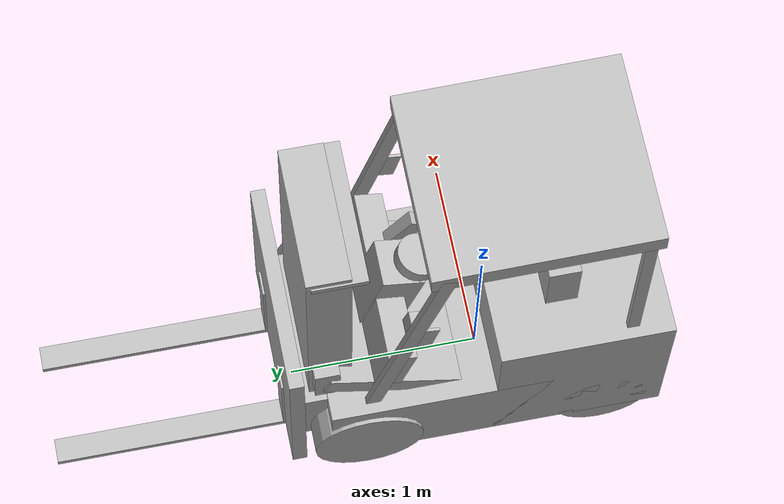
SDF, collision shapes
<?xml version="1.0" ?>
<sdf version="1.6">
    <model name="Forklift">
        <link name="base_link">
            <visual name="base_visual">
                <geometry>
                    <mesh>
                        <uri>base_visual.glb</uri>
                    </mesh>
                </geometry>
            </visual>
            <collision name="forklift_b132_collider_cylinder">
                <pose>-0.455378 0.684627 0.285136 0.0 1.570796 0.0</pose>
                <geometry>
                    <cylinder>
                        <radius>0.284716</radius>
                        <length>0.224494</length>
                    </cylinder>
                </geometry>
            </collision>
            <collision name="forklift_b129_collider_cylinder">
                <pose>-0.465442 -0.557447 0.222519 0.0 1.570796 0.0</pose>
                <geometry>
                    <cylinder>
                        <radius>0.238229</radius>
                        <length>0.161316</length>
                    </cylinder>
                </geometry>
            </collision>
            <collision name="forklift_b128_collider_cylinder">
                <pose>0.455379 0.684627 0.285136 0.0 1.570796 0.0</pose>
                <geometry>
                    <cylinder>
                        <radius>0.284716</radius>
                        <length>0.224494</length>
                    </cylinder>
                </geometry>
            </collision>
            <collision name="forklift_b125_collider_cylinder">
                <pose>0.465442 -0.557447 0.222519 0.0 1.570796 0.0</pose>
                <geometry>
                    <cylinder>
                        <radius>0.238229</radius>
                        <length>0.161316</length>
                    </cylinder>
                </geometry>
            </collision>
            <collision name="forklift_b044_collider_box">
                <pose>0.263007 1.684895 0.149 0.0 1.570796 0.0</pose>
                <geometry>
                    <box>
                        <size>0.034368 1.219199 0.127</size>
                    </box>
                </geometry>
            </collision>
            <collision name="forklift_b094_collider_box">
                <pose>-0.263007 1.684895 0.149 0.0 1.570796 0.0</pose>
                <geometry>
                    <box>
                        <size>0.034368 1.219199 0.127</size>
                    </box>
                </geometry>
            </collision>
            <collision name="forklift_b094_collider_box.001">
                <pose>-0.263007 1.087425 0.393275 0.0 1.570796 0.0</pose>
                <geometry>
                    <box>
                        <size>0.522919 0.024258 0.127</size>
                    </box>
                </geometry>
            </collision>
            <collision name="forklift_b044_collider_box.001">
                <pose>0.263007 1.087432 0.393275 0.0 1.570796 0.0</pose>
                <geometry>
                    <box>
                        <size>0.522919 0.024273 0.127</size>
                    </box>
                </geometry>
            </collision>
            <collision name="forklift_b033_collider_box">
                <pose>0.0 1.050077 0.674221 0.0 1.570796 0.0</pose>
                <geometry>
                    <box>
                        <size>1.039757 0.075838 1.084605</size>
                    </box>
                </geometry>
            </collision>
            <collision name="forklift_b026_collider_box">
                <pose>0.0 -0.427481 0.582787 0.0 1.570796 0.0</pose>
                <geometry>
                    <box>
                        <size>0.93852 0.893155 1.0922</size>
                    </box>
                </geometry>
            </collision>
            <collision name="forklift_b026_collider_box.001">
                <pose>0.0 0.203739 0.381118 0.0 1.570796 0.0</pose>
                <geometry>
                    <box>
                        <size>0.535182 1.345925 1.0922</size>
                    </box>
                </geometry>
            </collision>
            <collision name="forklift_b140_collider_box">
                <pose>0.0 0.851012 1.063734 0.0 1.570796 0.0</pose>
                <geometry>
                    <box>
                        <size>1.870128 0.222264 0.721164</size>
                    </box>
                </geometry>
            </collision>
            <collision name="forklift_b139_collider_box">
                <pose>-0.0 0.798919 1.95054 0.0 1.570796 0.0</pose>
                <geometry>
                    <box>
                        <size>0.034998 0.277386 0.742054</size>
                    </box>
                </geometry>
            </collision>
            <collision name="forklift_b139_collider_box.001">
                <pose>0.0 0.756692 1.823356 0.0 1.570796 0.0</pose>
                <geometry>
                    <box>
                        <size>0.288451 0.157958 0.440354</size>
                    </box>
                </geometry>
            </collision>
            <collision name="forklift_b140_collider_box.001">
                <pose>0.0 0.878046 0.875679 0.0 1.570796 0.0</pose>
                <geometry>
                    <box>
                        <size>0.22967 0.129587 0.875406</size>
                    </box>
                </geometry>
            </collision>
            <collision name="forklift_b139_collider_box.002">
                <pose>-0.000873 0.515486 0.930159 1.570796 1.308997 1.570796</pose>
                <geometry>
                    <box>
                        <size>0.660991 0.220155 0.243121</size>
                    </box>
                </geometry>
            </collision>
            <collision name="forklift_b139_collider_cylinder">
                <pose>0.0 0.338926 1.258317 -0.272899 3.141593 -0.0</pose>
                <geometry>
                    <cylinder>
                        <radius>0.114914</radius>
                        <length>0.083365</length>
                    </cylinder>
                </geometry>
            </collision>
            <collision name="forklift_b143_collider_box">
                <pose>0.203028 0.395788 1.121018 0.992323 -0.000479 3.141591</pose>
                <geometry>
                    <box>
                        <size>0.06902 0.360071 0.092192</size>
                    </box>
                </geometry>
            </collision>
            <collision name="forklift_b139_collider_box.003">
                <pose>-0.284765 0.466145 0.966224 1.260286 3.141593 -0.0</pose>
                <geometry>
                    <box>
                        <size>0.075778 0.433645 0.070774</size>
                    </box>
                </geometry>
            </collision>
            <collision name="forklift_b139_collider_box.004">
                <pose>-0.0 0.538142 0.948467 1.570797 -1.329257 -1.570797</pose>
                <geometry>
                    <box>
                        <size>0.3188 0.148748 0.910215</size>
                    </box>
                </geometry>
            </collision>
            <collision name="forklift_b139_collider_box.005">
                <pose>-0.471358 -0.666068 1.553107 0.0 -0.0 -1.570796</pose>
                <geometry>
                    <box>
                        <size>0.062739 0.033 1.032844</size>
                    </box>
                </geometry>
            </collision>
            <collision name="forklift_b139_collider_box.006">
                <pose>0.471358 -0.666068 1.553107 0.0 1.570796 0.0</pose>
                <geometry>
                    <box>
                        <size>1.032844 0.062739 0.033</size>
                    </box>
                </geometry>
            </collision>
            <collision name="forklift_b142_collider_box">
                <pose>-0.0 -0.172392 2.059983 -0.023069 -0.0 -0.0</pose>
                <geometry>
                    <box>
                        <size>0.981179 1.125203 0.115755</size>
                    </box>
                </geometry>
            </collision>
            <collision name="forklift_b139_collider_box.007">
                <pose>-0.47289 0.481024 1.334569 1.570796 1.326061 1.570796</pose>
                <geometry>
                    <box>
                        <size>1.500593 0.074299 0.0354</size>
                    </box>
                </geometry>
            </collision>
            <collision name="forklift_b139_collider_box.008">
                <pose>0.47289 0.481024 1.334569 1.570796 1.326061 1.570796</pose>
                <geometry>
                    <box>
                        <size>1.500593 0.074299 0.0354</size>
                    </box>
                </geometry>
            </collision>
            <collision name="forklift_b139_collider_box.009">
                <pose>0.0 -0.343208 1.190168 0.0 1.570796 0.0</pose>
                <geometry>
                    <box>
                        <size>0.39912 0.163592 0.561282</size>
                    </box>
                </geometry>
            </collision>
            <collision name="forklift_b139_collider_box.010">
                <pose>0.0 0.539583 0.734719 -0.393722 -0.0 3.141593</pose>
                <geometry>
                    <box>
                        <size>0.902271 0.740745 0.111237</size>
                    </box>
                </geometry>
            </collision>
            <collision name="forklift_b140_collider_box.002">
                <pose>0.0 0.927693 0.409215 3.141592 -0.0 -0.0</pose>
                <geometry>
                    <box>
                        <size>0.834675 0.203935 0.423513</size>
                    </box>
                </geometry>
            </collision>
            <collision name="forklift_b139_collider_box.011">
                <pose>0.472881 0.405408 1.378921 1.359241 0.0 3.141593</pose>
                <geometry>
                    <box>
                        <size>0.016 0.195484 0.11207</size>
                    </box>
                </geometry>
            </collision>
            <collision name="forklift_b139_collider_box.012">
                <pose>-0.472881 0.405408 1.378921 -0.0 1.359241 1.570796</pose>
                <geometry>
                    <box>
                        <size>0.195484 0.016 0.11207</size>
                    </box>
                </geometry>
            </collision>
        </link>
    </model>
</sdf>
